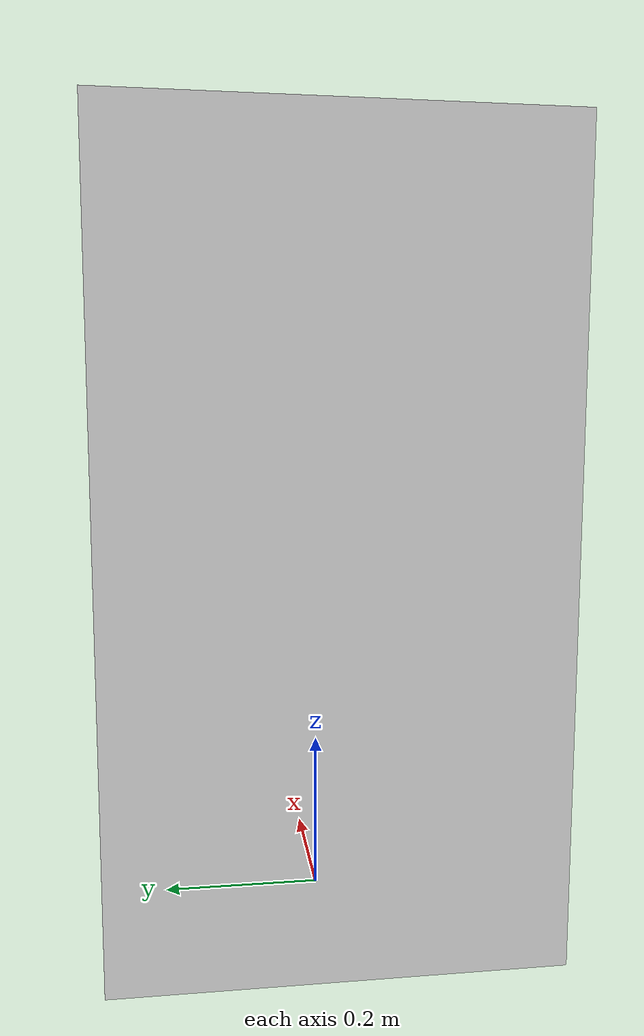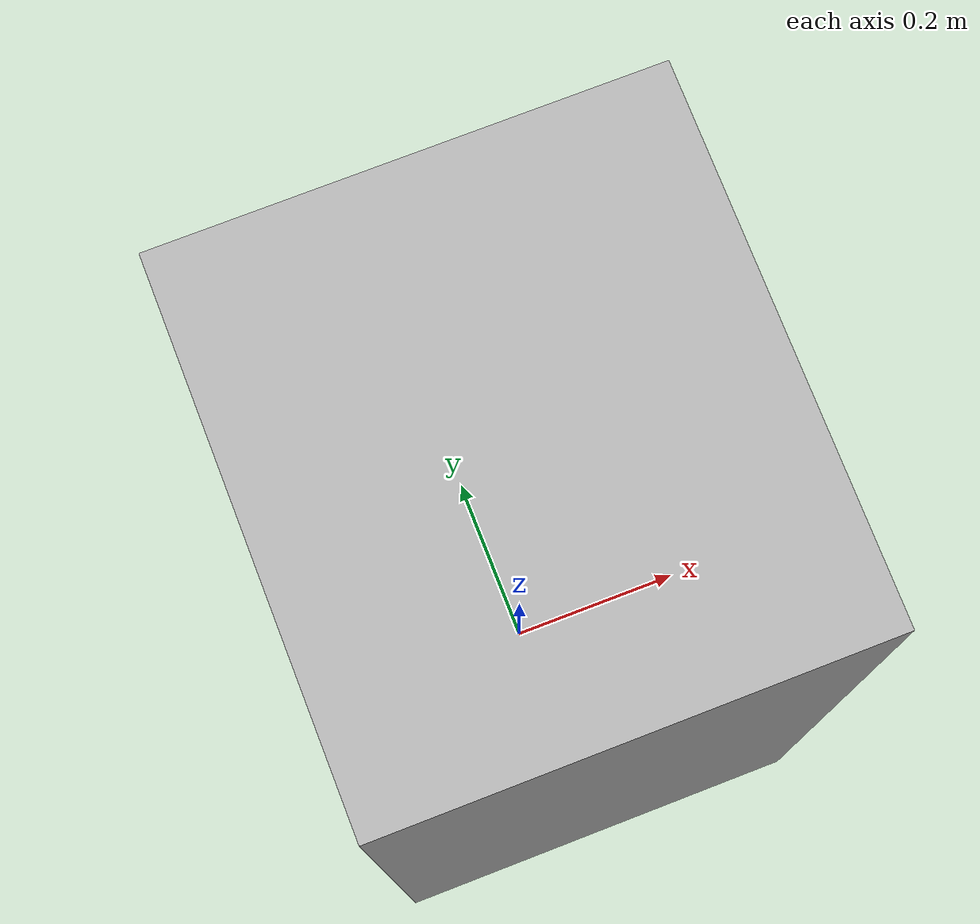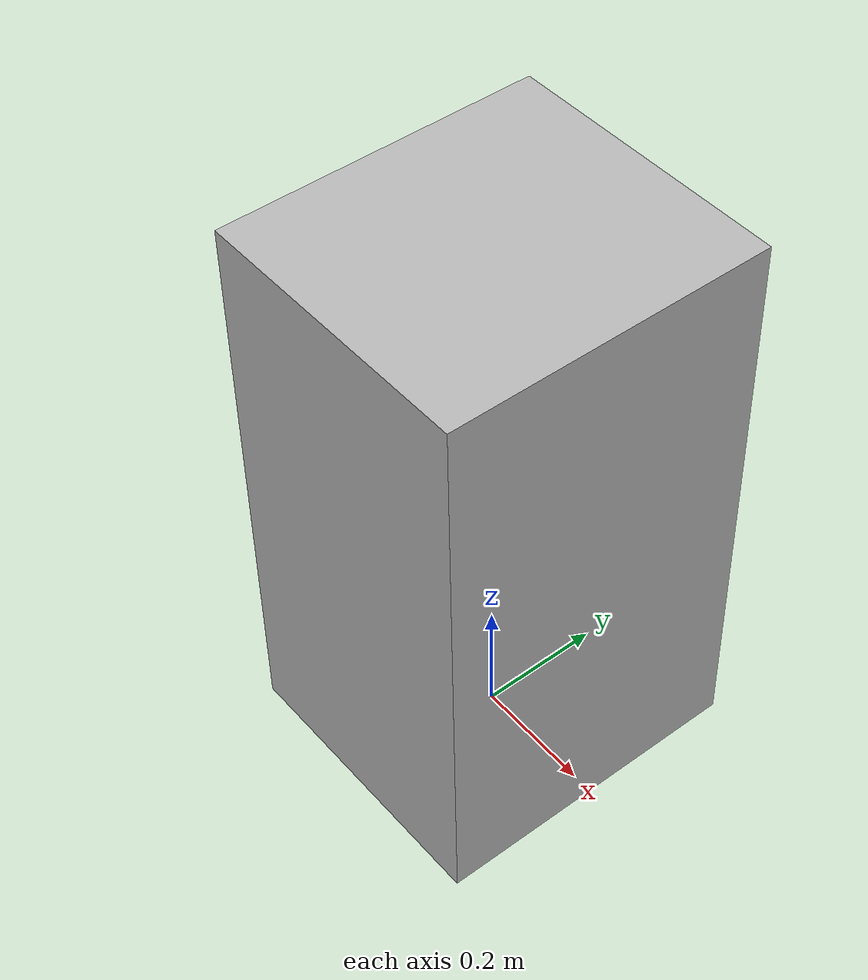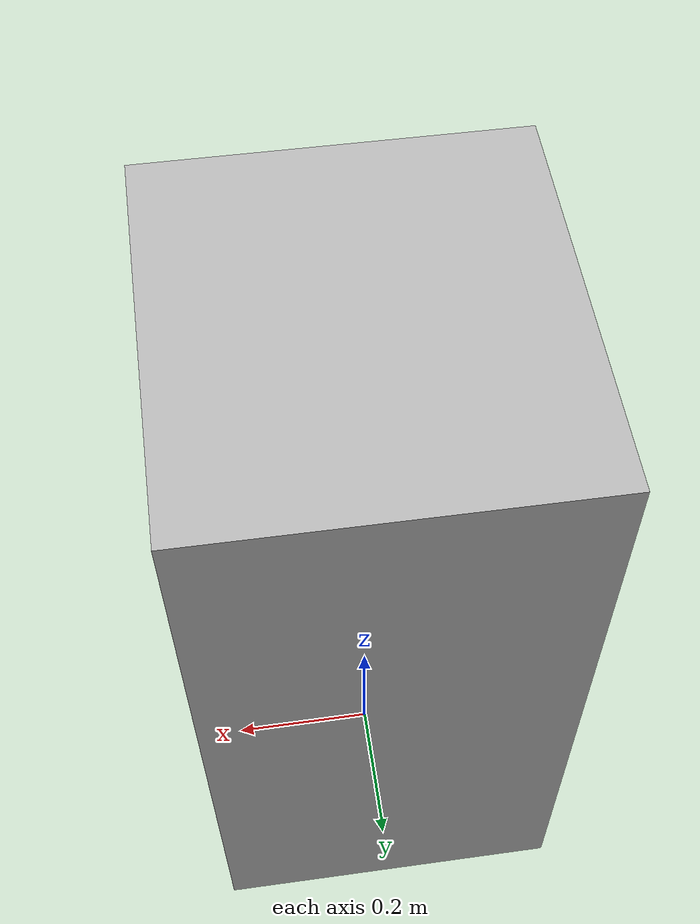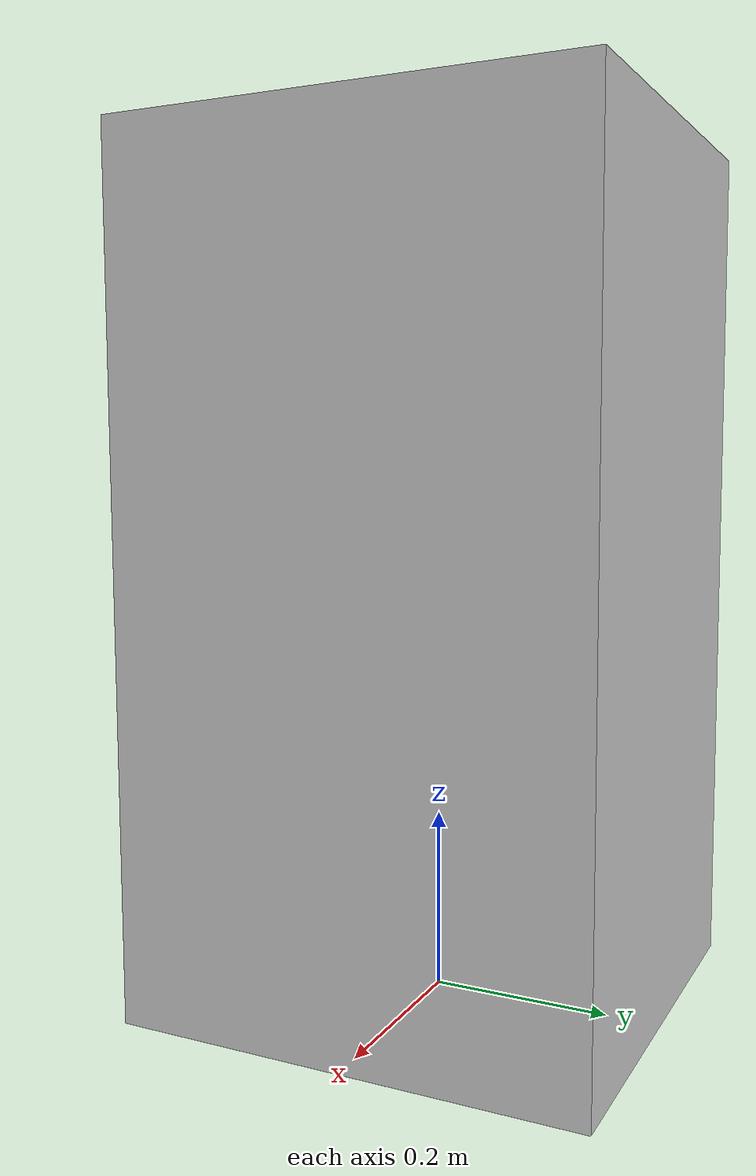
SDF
<?xml version="1.0" ?>
<sdf version="1.6">
  <model name="rwc2023/washbasin">
    <static>true</static>
    <link name="1_link">
      <collision name="1_col">
        <geometry>
          <box>
            <size>0.47 0.52 0.94</size>
          </box>
        </geometry>
      </collision>
      <visual name="1_vis">
        <geometry>
          <box>
            <size>0.47 0.52 0.94</size>
          </box>
        </geometry>
      </visual>
      <pose>0.0 0.0 0.47 0 0 0</pose>
    </link>
    <link name="on_top_of">
      <virtual_volume name="on_top_of_vv">
        <geometry>
          <box>
            <size>0.45 0.46 0.25</size>
          </box>
        </geometry>
        <pose>0.0 0.0 1.085 0 0 0</pose>
      </virtual_volume>
    </link>
    <link name="in_front_of">
      <virtual_volume name="in_front_of_vv">
        <geometry>
          <box>
            <size>0.2 0.32 0.01</size>
          </box>
        </geometry>
        <pose>0.735 0.0 0.005 0 0 0</pose>
      </virtual_volume>
    </link>
  </model>
</sdf>
